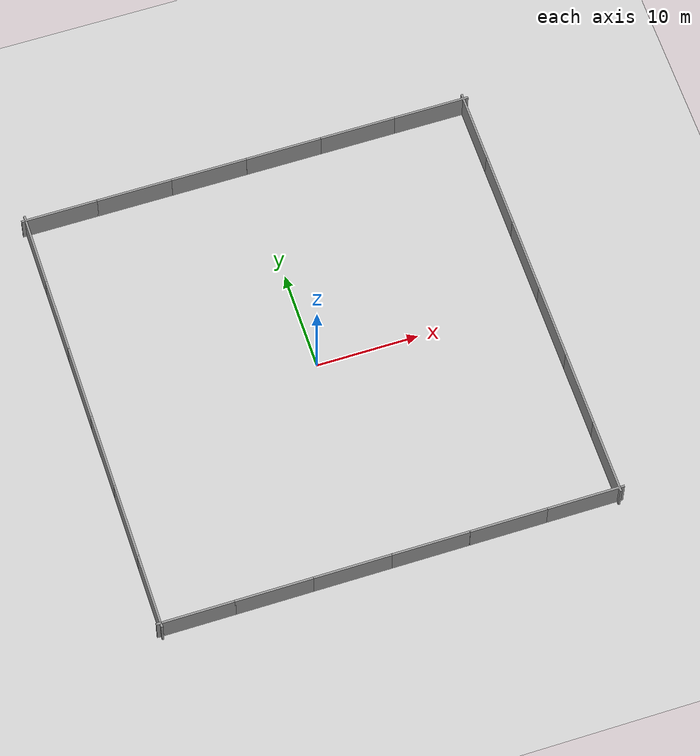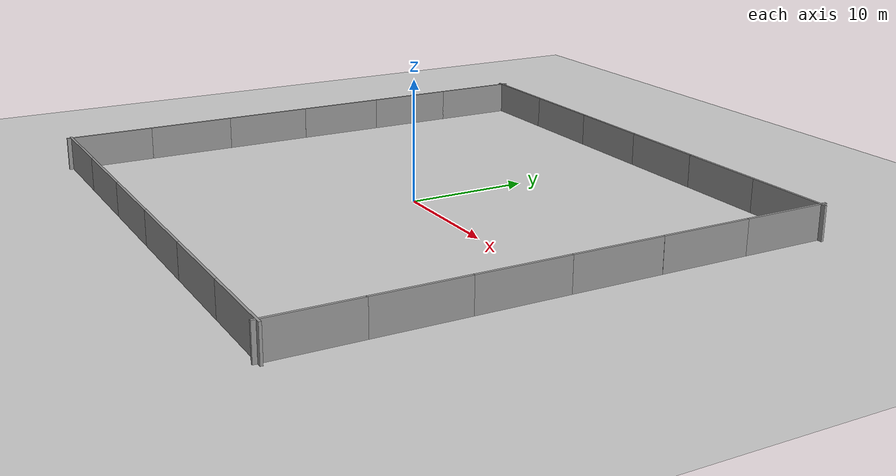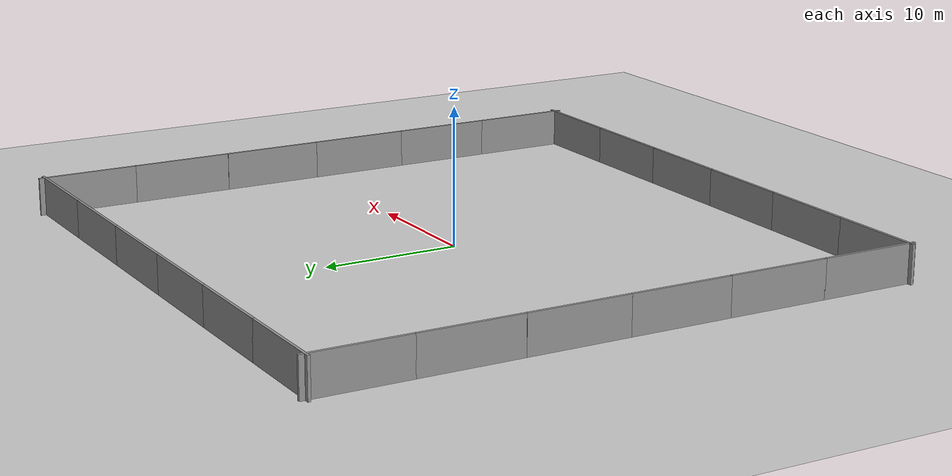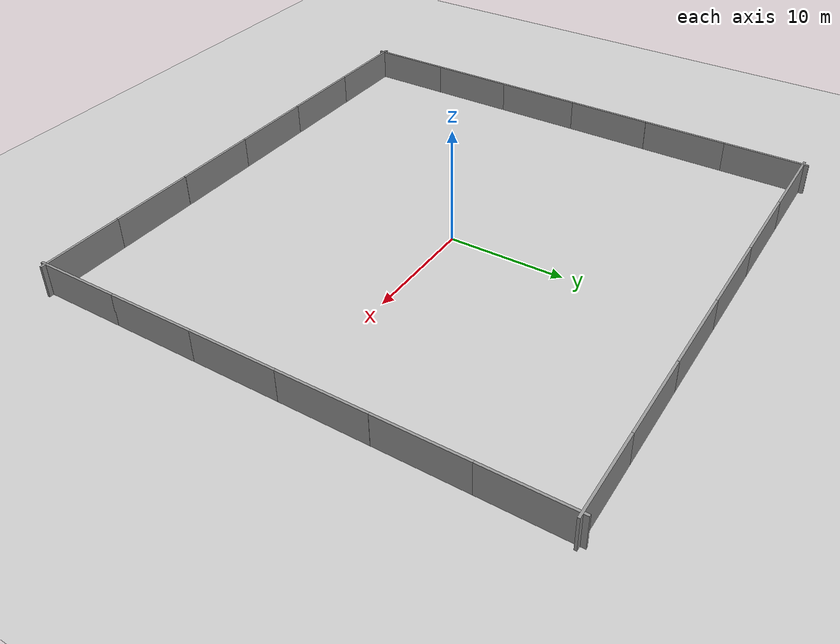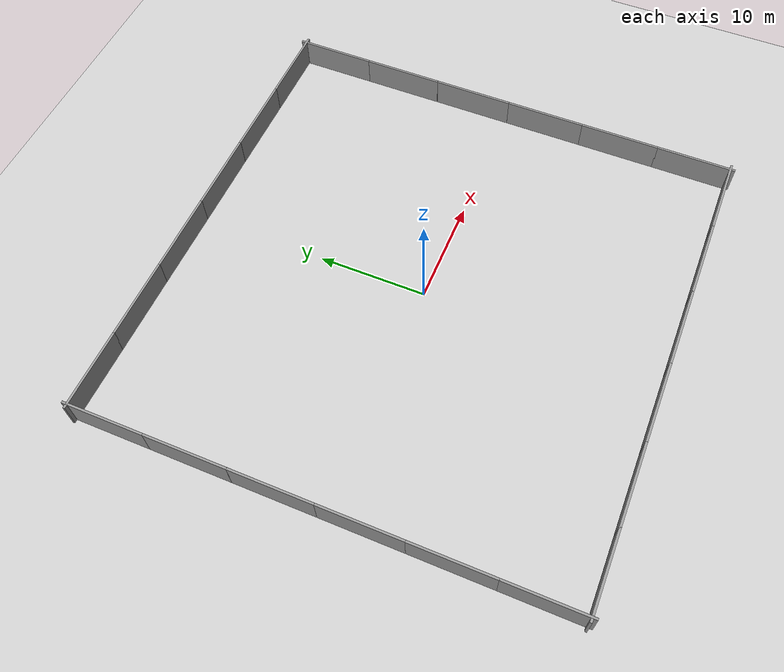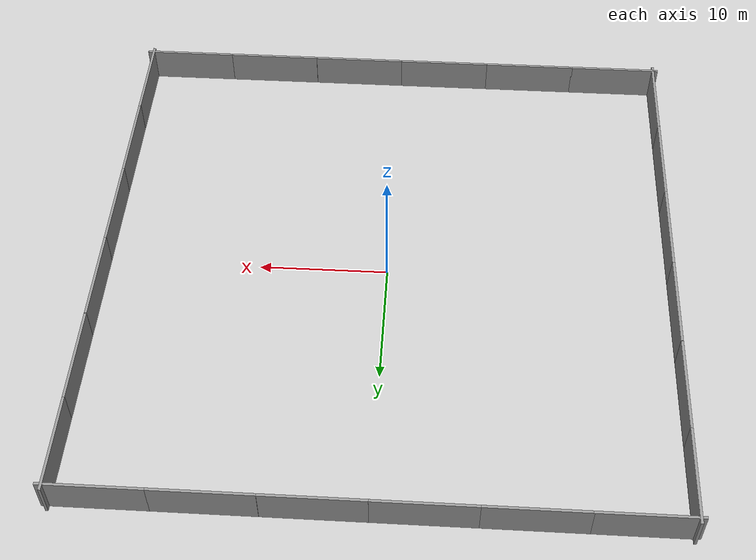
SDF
<sdf version="1.6">
 <world name="default">
  <light name="sun" type="directional">
   <pose>0 0 10 0 -0 0</pose>
   <diffuse>0.8 0.8 0.8 1</diffuse>
   <specular>0.1 0.1 0.1 1</specular>
   <attenuation>
    <range>1000</range>
    <constant>0.9</constant>
    <linear>0.01</linear>
    <quadratic>0.001</quadratic>
   </attenuation>
   <direction>-0.5 0.5 -1</direction>
  </light>
  <model name="ground_plane">
   <static>1</static>
   <link name="link">
    <collision name="collision">
     <geometry><plane><normal>0 0 1</normal><size>100 100</size></plane></geometry>
     <surface><friction><ode><mu>100</mu><mu2>50</mu2></ode></friction></surface>
    </collision>
    <visual name="visual">
     <cast_shadows>0</cast_shadows>
     <geometry><plane><normal>0 0 1</normal><size>100 100</size></plane></geometry>
     <material>
      <script><uri>file://media/materials/scripts/gazebo.material</uri><name>Gazebo/Grey</name></script>
     </material>
    </visual>
   </link>
  </model>
  <gravity>0 0 -9.8</gravity>
  <magnetic_field>6e-06 2.3e-05 -4.2e-05</magnetic_field>
  <atmosphere type="adiabatic"/>
  <physics name="default_physics" default="0" type="ode">
   <max_step_size>0.001</max_step_size>
   <real_time_factor>1</real_time_factor>
   <real_time_update_rate>1000</real_time_update_rate>
  </physics>
  <scene><ambient>0.4 0.4 0.4 1</ambient><background>0.7 0.7 0.7 1</background><shadows>1</shadows></scene>
  <spherical_coordinates>
   <surface_model>EARTH_WGS84</surface_model>
   <latitude_deg>0</latitude_deg>
   <longitude_deg>0</longitude_deg>
   <elevation>0</elevation>
   <heading_deg>0</heading_deg>
  </spherical_coordinates>
  <model name="6walls">
   <model name="grey_wall">
    <static>1</static>
    <link name="link">
     <pose>0 0 1.4 0 -0 0</pose>
     <collision name="collision"><geometry><box><size>7.5 0.2 2.8</size></box></geometry></collision>
     <visual name="visual">
      <cast_shadows>0</cast_shadows>
      <geometry><box><size>7.5 0.2 2.8</size></box></geometry>
      <material>
       <script>
        <uri>model://grey_wall/materials/scripts</uri>
        <uri>model://grey_wall/materials/textures</uri>
        <name>vrc/grey_wall</name>
       </script>
      </material>
     </visual>
    </link>
    <pose>-18.6834 0 0 0 -0 0</pose>
   </model>
   <model name="grey_wall_0">
    <static>1</static>
    <link name="link">
     <pose>0 0 1.4 0 -0 0</pose>
     <collision name="collision"><geometry><box><size>7.5 0.2 2.8</size></box></geometry></collision>
     <visual name="visual">
      <cast_shadows>0</cast_shadows>
      <geometry><box><size>7.5 0.2 2.8</size></box></geometry>
      <material>
       <script>
        <uri>model://grey_wall/materials/scripts</uri>
        <uri>model://grey_wall/materials/textures</uri>
        <name>vrc/grey_wall</name>
       </script>
      </material>
     </visual>
    </link>
    <pose>-11.2658 0 0 0 -0 0</pose>
   </model>
   <model name="grey_wall_1">
    <static>1</static>
    <link name="link">
     <pose>0 0 1.4 0 -0 0</pose>
     <collision name="collision"><geometry><box><size>7.5 0.2 2.8</size></box></geometry></collision>
     <visual name="visual">
      <cast_shadows>0</cast_shadows>
      <geometry><box><size>7.5 0.2 2.8</size></box></geometry>
      <material>
       <script>
        <uri>model://grey_wall/materials/scripts</uri>
        <uri>model://grey_wall/materials/textures</uri>
        <name>vrc/grey_wall</name>
       </script>
      </material>
     </visual>
    </link>
    <pose>-3.76669 0 0 0 -0 0</pose>
   </model>
   <model name="grey_wall_2">
    <static>1</static>
    <link name="link">
     <pose>0 0 1.4 0 -0 0</pose>
     <collision name="collision"><geometry><box><size>7.5 0.2 2.8</size></box></geometry></collision>
     <visual name="visual">
      <cast_shadows>0</cast_shadows>
      <geometry><box><size>7.5 0.2 2.8</size></box></geometry>
      <material>
       <script>
        <uri>model://grey_wall/materials/scripts</uri>
        <uri>model://grey_wall/materials/textures</uri>
        <name>vrc/grey_wall</name>
       </script>
      </material>
     </visual>
    </link>
    <pose>3.73421 0 0 0 -0 0</pose>
   </model>
   <model name="grey_wall_3">
    <static>1</static>
    <link name="link">
     <pose>0 0 1.4 0 -0 0</pose>
     <collision name="collision"><geometry><box><size>7.5 0.2 2.8</size></box></geometry></collision>
     <visual name="visual">
      <cast_shadows>0</cast_shadows>
      <geometry><box><size>7.5 0.2 2.8</size></box></geometry>
      <material>
       <script>
        <uri>model://grey_wall/materials/scripts</uri>
        <uri>model://grey_wall/materials/textures</uri>
        <name>vrc/grey_wall</name>
       </script>
      </material>
     </visual>
    </link>
    <pose>11.2475 0 0 0 -0 0</pose>
   </model>
   <model name="grey_wall_4">
    <static>1</static>
    <link name="link">
     <pose>0 0 1.4 0 -0 0</pose>
     <collision name="collision"><geometry><box><size>7.5 0.2 2.8</size></box></geometry></collision>
     <visual name="visual">
      <cast_shadows>0</cast_shadows>
      <geometry><box><size>7.5 0.2 2.8</size></box></geometry>
      <material>
       <script>
        <uri>model://grey_wall/materials/scripts</uri>
        <uri>model://grey_wall/materials/textures</uri>
        <name>vrc/grey_wall</name>
       </script>
      </material>
     </visual>
    </link>
    <pose>18.7342 0 0 0 -0 0</pose>
   </model>
   <static>0</static>
   <pose>0 22 0 0 -0 0</pose>
  </model>
  <model name="6walls_0">
   <model name="grey_wall">
    <static>1</static>
    <link name="link">
     <pose>0 0 1.4 0 -0 0</pose>
     <collision name="collision"><geometry><box><size>7.5 0.2 2.8</size></box></geometry></collision>
     <visual name="visual">
      <cast_shadows>0</cast_shadows>
      <geometry><box><size>7.5 0.2 2.8</size></box></geometry>
      <material>
       <script>
        <uri>model://grey_wall/materials/scripts</uri>
        <uri>model://grey_wall/materials/textures</uri>
        <name>vrc/grey_wall</name>
       </script>
      </material>
     </visual>
    </link>
    <pose>-18.6834 0 0 0 -0 0</pose>
   </model>
   <model name="grey_wall_0">
    <static>1</static>
    <link name="link">
     <pose>0 0 1.4 0 -0 0</pose>
     <collision name="collision"><geometry><box><size>7.5 0.2 2.8</size></box></geometry></collision>
     <visual name="visual">
      <cast_shadows>0</cast_shadows>
      <geometry><box><size>7.5 0.2 2.8</size></box></geometry>
      <material>
       <script>
        <uri>model://grey_wall/materials/scripts</uri>
        <uri>model://grey_wall/materials/textures</uri>
        <name>vrc/grey_wall</name>
       </script>
      </material>
     </visual>
    </link>
    <pose>-11.2658 0 0 0 -0 0</pose>
   </model>
   <model name="grey_wall_1">
    <static>1</static>
    <link name="link">
     <pose>0 0 1.4 0 -0 0</pose>
     <collision name="collision"><geometry><box><size>7.5 0.2 2.8</size></box></geometry></collision>
     <visual name="visual">
      <cast_shadows>0</cast_shadows>
      <geometry><box><size>7.5 0.2 2.8</size></box></geometry>
      <material>
       <script>
        <uri>model://grey_wall/materials/scripts</uri>
        <uri>model://grey_wall/materials/textures</uri>
        <name>vrc/grey_wall</name>
       </script>
      </material>
     </visual>
    </link>
    <pose>-3.76669 0 0 0 -0 0</pose>
   </model>
   <model name="grey_wall_2">
    <static>1</static>
    <link name="link">
     <pose>0 0 1.4 0 -0 0</pose>
     <collision name="collision"><geometry><box><size>7.5 0.2 2.8</size></box></geometry></collision>
     <visual name="visual">
      <cast_shadows>0</cast_shadows>
      <geometry><box><size>7.5 0.2 2.8</size></box></geometry>
      <material>
       <script>
        <uri>model://grey_wall/materials/scripts</uri>
        <uri>model://grey_wall/materials/textures</uri>
        <name>vrc/grey_wall</name>
       </script>
      </material>
     </visual>
    </link>
    <pose>3.73421 0 0 0 -0 0</pose>
   </model>
   <model name="grey_wall_3">
    <static>1</static>
    <link name="link">
     <pose>0 0 1.4 0 -0 0</pose>
     <collision name="collision"><geometry><box><size>7.5 0.2 2.8</size></box></geometry></collision>
     <visual name="visual">
      <cast_shadows>0</cast_shadows>
      <geometry><box><size>7.5 0.2 2.8</size></box></geometry>
      <material>
       <script>
        <uri>model://grey_wall/materials/scripts</uri>
        <uri>model://grey_wall/materials/textures</uri>
        <name>vrc/grey_wall</name>
       </script>
      </material>
     </visual>
    </link>
    <pose>11.2475 0 0 0 -0 0</pose>
   </model>
   <model name="grey_wall_4">
    <static>1</static>
    <link name="link">
     <pose>0 0 1.4 0 -0 0</pose>
     <collision name="collision"><geometry><box><size>7.5 0.2 2.8</size></box></geometry></collision>
     <visual name="visual">
      <cast_shadows>0</cast_shadows>
      <geometry><box><size>7.5 0.2 2.8</size></box></geometry>
      <material>
       <script>
        <uri>model://grey_wall/materials/scripts</uri>
        <uri>model://grey_wall/materials/textures</uri>
        <name>vrc/grey_wall</name>
       </script>
      </material>
     </visual>
    </link>
    <pose>18.7342 0 0 0 -0 0</pose>
   </model>
   <static>0</static>
   <pose>0 -22 0 0 -0 0</pose>
  </model>
  <model name="6walls_clone">
   <model name="grey_wall">
    <static>1</static>
    <link name="link">
     <pose>0 0 1.4 0 -0 0</pose>
     <collision name="collision"><geometry><box><size>7.5 0.2 2.8</size></box></geometry></collision>
     <visual name="visual">
      <cast_shadows>0</cast_shadows>
      <geometry><box><size>7.5 0.2 2.8</size></box></geometry>
      <material>
       <script>
        <uri>model://grey_wall/materials/scripts</uri>
        <uri>model://grey_wall/materials/textures</uri>
        <name>vrc/grey_wall</name>
       </script>
      </material>
     </visual>
    </link>
    <pose>-18.6834 0 0 0 -0 0</pose>
   </model>
   <model name="grey_wall_0">
    <static>1</static>
    <link name="link">
     <pose>0 0 1.4 0 -0 0</pose>
     <collision name="collision"><geometry><box><size>7.5 0.2 2.8</size></box></geometry></collision>
     <visual name="visual">
      <cast_shadows>0</cast_shadows>
      <geometry><box><size>7.5 0.2 2.8</size></box></geometry>
      <material>
       <script>
        <uri>model://grey_wall/materials/scripts</uri>
        <uri>model://grey_wall/materials/textures</uri>
        <name>vrc/grey_wall</name>
       </script>
      </material>
     </visual>
    </link>
    <pose>-11.2658 0 0 0 -0 0</pose>
   </model>
   <model name="grey_wall_1">
    <static>1</static>
    <link name="link">
     <pose>0 0 1.4 0 -0 0</pose>
     <collision name="collision"><geometry><box><size>7.5 0.2 2.8</size></box></geometry></collision>
     <visual name="visual">
      <cast_shadows>0</cast_shadows>
      <geometry><box><size>7.5 0.2 2.8</size></box></geometry>
      <material>
       <script>
        <uri>model://grey_wall/materials/scripts</uri>
        <uri>model://grey_wall/materials/textures</uri>
        <name>vrc/grey_wall</name>
       </script>
      </material>
     </visual>
    </link>
    <pose>-3.76669 0 0 0 -0 0</pose>
   </model>
   <model name="grey_wall_2">
    <static>1</static>
    <link name="link">
     <pose>0 0 1.4 0 -0 0</pose>
     <collision name="collision"><geometry><box><size>7.5 0.2 2.8</size></box></geometry></collision>
     <visual name="visual">
      <cast_shadows>0</cast_shadows>
      <geometry><box><size>7.5 0.2 2.8</size></box></geometry>
      <material>
       <script>
        <uri>model://grey_wall/materials/scripts</uri>
        <uri>model://grey_wall/materials/textures</uri>
        <name>vrc/grey_wall</name>
       </script>
      </material>
     </visual>
    </link>
    <pose>3.73421 0 0 0 -0 0</pose>
   </model>
   <model name="grey_wall_3">
    <static>1</static>
    <link name="link">
     <pose>0 0 1.4 0 -0 0</pose>
     <collision name="collision"><geometry><box><size>7.5 0.2 2.8</size></box></geometry></collision>
     <visual name="visual">
      <cast_shadows>0</cast_shadows>
      <geometry><box><size>7.5 0.2 2.8</size></box></geometry>
      <material>
       <script>
        <uri>model://grey_wall/materials/scripts</uri>
        <uri>model://grey_wall/materials/textures</uri>
        <name>vrc/grey_wall</name>
       </script>
      </material>
     </visual>
    </link>
    <pose>11.2475 0 0 0 -0 0</pose>
   </model>
   <model name="grey_wall_4">
    <static>1</static>
    <link name="link">
     <pose>0 0 1.4 0 -0 0</pose>
     <collision name="collision"><geometry><box><size>7.5 0.2 2.8</size></box></geometry></collision>
     <visual name="visual">
      <cast_shadows>0</cast_shadows>
      <geometry><box><size>7.5 0.2 2.8</size></box></geometry>
      <material>
       <script>
        <uri>model://grey_wall/materials/scripts</uri>
        <uri>model://grey_wall/materials/textures</uri>
        <name>vrc/grey_wall</name>
       </script>
      </material>
     </visual>
    </link>
    <pose>18.7342 0 0 0 -0 0</pose>
   </model>
   <static>0</static>
   <pose>22 0 0 0 -0 1.5708</pose>
  </model>
  <model name="6walls_clone_clone">
   <model name="grey_wall">
    <static>1</static>
    <link name="link">
     <pose>0 0 1.4 0 -0 0</pose>
     <collision name="collision"><geometry><box><size>7.5 0.2 2.8</size></box></geometry></collision>
     <visual name="visual">
      <cast_shadows>0</cast_shadows>
      <geometry><box><size>7.5 0.2 2.8</size></box></geometry>
      <material>
       <script>
        <uri>model://grey_wall/materials/scripts</uri>
        <uri>model://grey_wall/materials/textures</uri>
        <name>vrc/grey_wall</name>
       </script>
      </material>
     </visual>
    </link>
    <pose>-18.6834 0 0 0 -0 0</pose>
   </model>
   <model name="grey_wall_0">
    <static>1</static>
    <link name="link">
     <pose>0 0 1.4 0 -0 0</pose>
     <collision name="collision"><geometry><box><size>7.5 0.2 2.8</size></box></geometry></collision>
     <visual name="visual">
      <cast_shadows>0</cast_shadows>
      <geometry><box><size>7.5 0.2 2.8</size></box></geometry>
      <material>
       <script>
        <uri>model://grey_wall/materials/scripts</uri>
        <uri>model://grey_wall/materials/textures</uri>
        <name>vrc/grey_wall</name>
       </script>
      </material>
     </visual>
    </link>
    <pose>-11.2658 0 0 0 -0 0</pose>
   </model>
   <model name="grey_wall_1">
    <static>1</static>
    <link name="link">
     <pose>0 0 1.4 0 -0 0</pose>
     <collision name="collision"><geometry><box><size>7.5 0.2 2.8</size></box></geometry></collision>
     <visual name="visual">
      <cast_shadows>0</cast_shadows>
      <geometry><box><size>7.5 0.2 2.8</size></box></geometry>
      <material>
       <script>
        <uri>model://grey_wall/materials/scripts</uri>
        <uri>model://grey_wall/materials/textures</uri>
        <name>vrc/grey_wall</name>
       </script>
      </material>
     </visual>
    </link>
    <pose>-3.76669 0 0 0 -0 0</pose>
   </model>
   <model name="grey_wall_2">
    <static>1</static>
    <link name="link">
     <pose>0 0 1.4 0 -0 0</pose>
     <collision name="collision"><geometry><box><size>7.5 0.2 2.8</size></box></geometry></collision>
     <visual name="visual">
      <cast_shadows>0</cast_shadows>
      <geometry><box><size>7.5 0.2 2.8</size></box></geometry>
      <material>
       <script>
        <uri>model://grey_wall/materials/scripts</uri>
        <uri>model://grey_wall/materials/textures</uri>
        <name>vrc/grey_wall</name>
       </script>
      </material>
     </visual>
    </link>
    <pose>3.73421 0 0 0 -0 0</pose>
   </model>
   <model name="grey_wall_3">
    <static>1</static>
    <link name="link">
     <pose>0 0 1.4 0 -0 0</pose>
     <collision name="collision"><geometry><box><size>7.5 0.2 2.8</size></box></geometry></collision>
     <visual name="visual">
      <cast_shadows>0</cast_shadows>
      <geometry><box><size>7.5 0.2 2.8</size></box></geometry>
      <material>
       <script>
        <uri>model://grey_wall/materials/scripts</uri>
        <uri>model://grey_wall/materials/textures</uri>
        <name>vrc/grey_wall</name>
       </script>
      </material>
     </visual>
    </link>
    <pose>11.2475 0 0 0 -0 0</pose>
   </model>
   <model name="grey_wall_4">
    <static>1</static>
    <link name="link">
     <pose>0 0 1.4 0 -0 0</pose>
     <collision name="collision"><geometry><box><size>7.5 0.2 2.8</size></box></geometry></collision>
     <visual name="visual">
      <cast_shadows>0</cast_shadows>
      <geometry><box><size>7.5 0.2 2.8</size></box></geometry>
      <material>
       <script>
        <uri>model://grey_wall/materials/scripts</uri>
        <uri>model://grey_wall/materials/textures</uri>
        <name>vrc/grey_wall</name>
       </script>
      </material>
     </visual>
    </link>
    <pose>18.7342 0 0 0 -0 0</pose>
   </model>
   <static>0</static>
   <pose>-22 0 0 0 -0 1.5708</pose>
  </model>
 </world>
</sdf>
